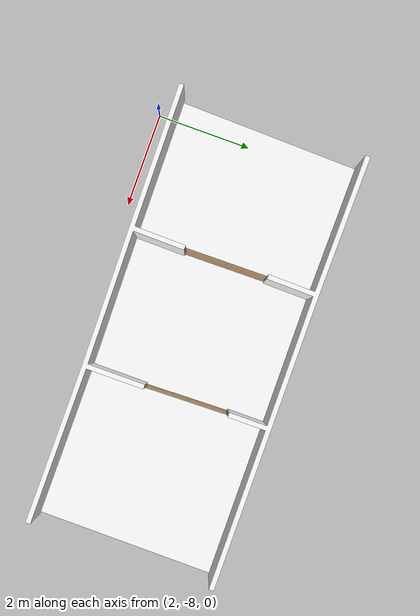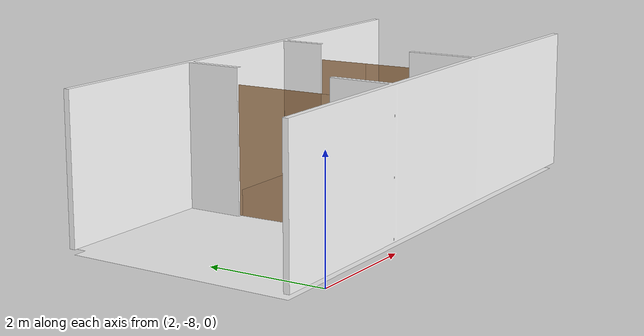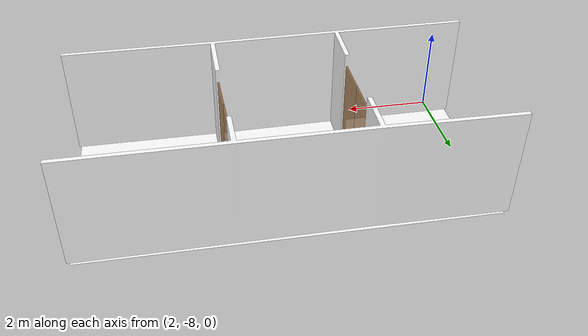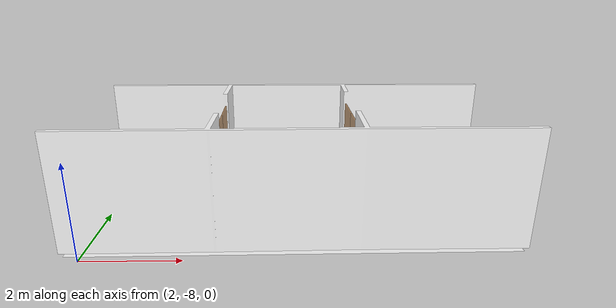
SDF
<sdf version="1.7">
 <world name="world">
  <scene><ambient>0.8 0.8 0.8 1.0</ambient><background>0 0 0</background><grid>false</grid></scene>
  <include><uri>model://sun</uri></include>
  <model name="negative_motion">
   <pose>7.442415968558777 -5.432580376744042 0.0 0 0 1.596654026471199</pose>
   <link name="right">
    <pose>0.46965257697674084 0 1.11 0 0 0</pose>
    <visual name="right_visual">
     <geometry><box><size>0.9293051539534817 0.03 2.2</size></box></geometry>
     <material><ambient>0.5 0.25 0 0.6</ambient><diffuse>0.5 0.25 0 0.6</diffuse></material>
    </visual>
    <collision name="right_collision">
     <geometry><box><size>0.9293051539534817 0.03 2.2</size></box></geometry>
     <surface><contact><collide_bitmask>0x02</collide_bitmask></contact></surface>
    </collision>
    <inertial>
     <mass>50.0</mass>
     <inertia><ixx>20.17041666666667</ixx><iyy>23.765033621518775</iyy><izz>3.6021169548521015</izz></inertia>
    </inertial>
   </link>
   <joint name="right_joint" type="revolute">
    <parent>world</parent>
    <child>right</child>
    <axis><xyz>0 0 1</xyz><limit><lower>0</lower><upper>1.57</upper></limit></axis>
    <pose>0.46965257697674084 0 0 0 0 0</pose>
   </joint>
   <link name="left">
    <pose>-0.46965257697674084 0 1.11 0 0 0</pose>
    <visual name="left_visual">
     <geometry><box><size>0.9293051539534817 0.03 2.2</size></box></geometry>
     <material><ambient>0.5 0.25 0 0.6</ambient><diffuse>0.5 0.25 0 0.6</diffuse></material>
    </visual>
    <collision name="left_collision">
     <geometry><box><size>0.9293051539534817 0.03 2.2</size></box></geometry>
     <surface><contact><collide_bitmask>0x02</collide_bitmask></contact></surface>
    </collision>
    <inertial>
     <mass>50.0</mass>
     <inertia><ixx>20.17041666666667</ixx><iyy>23.765033621518775</iyy><izz>3.6021169548521015</izz></inertia>
    </inertial>
   </link>
   <joint name="left_joint" type="revolute">
    <parent>world</parent>
    <child>left</child>
    <axis><xyz>0 0 1</xyz><limit><lower>-1.57</lower><upper>0</upper></limit></axis>
    <pose>-0.46965257697674084 0 0 0 0 0</pose>
   </joint>
   <plugin name="door" filename="libdoor.so">
    <v_max_door>0.5</v_max_door>
    <a_max_door>0.3</a_max_door>
    <a_nom_door>0.15</a_nom_door>
    <dx_min_door>0.01</dx_min_door>
    <f_max_door>500.0</f_max_door>
    <door name="negative_motion" type="DoubleSwingDoor" left_joint_name="left_joint" right_joint_name="right_joint"/>
   </plugin>
  </model>
  <model name="positive_motion">
   <pose>4.560670876610997 -5.6187494378998295 0.0 0 0 -1.5620784649824977</pose>
   <link name="right">
    <pose>0.4654555378216558 0 1.11 0 0 0</pose>
    <visual name="right_visual">
     <geometry><box><size>0.9209110756433115 0.03 2.2</size></box></geometry>
     <material><ambient>0.5 0.25 0 0.6</ambient><diffuse>0.5 0.25 0 0.6</diffuse></material>
    </visual>
    <collision name="right_collision">
     <geometry><box><size>0.9209110756433115 0.03 2.2</size></box></geometry>
     <surface><contact><collide_bitmask>0x02</collide_bitmask></contact></surface>
    </collision>
    <inertial>
     <mass>50.0</mass>
     <inertia><ixx>20.17041666666667</ixx><iyy>23.700321705177174</iyy><izz>3.5374050385105047</izz></inertia>
    </inertial>
   </link>
   <joint name="right_joint" type="revolute">
    <parent>world</parent>
    <child>right</child>
    <axis><xyz>0 0 -1</xyz><limit><lower>0</lower><upper>1.57</upper></limit></axis>
    <pose>0.4654555378216558 0 0 0 0 0</pose>
   </joint>
   <link name="left">
    <pose>-0.4654555378216558 0 1.11 0 0 0</pose>
    <visual name="left_visual">
     <geometry><box><size>0.9209110756433115 0.03 2.2</size></box></geometry>
     <material><ambient>0.5 0.25 0 0.6</ambient><diffuse>0.5 0.25 0 0.6</diffuse></material>
    </visual>
    <collision name="left_collision">
     <geometry><box><size>0.9209110756433115 0.03 2.2</size></box></geometry>
     <surface><contact><collide_bitmask>0x02</collide_bitmask></contact></surface>
    </collision>
    <inertial>
     <mass>50.0</mass>
     <inertia><ixx>20.17041666666667</ixx><iyy>23.700321705177174</iyy><izz>3.5374050385105047</izz></inertia>
    </inertial>
   </link>
   <joint name="left_joint" type="revolute">
    <parent>world</parent>
    <child>left</child>
    <axis><xyz>0 0 -1</xyz><limit><lower>-1.57</lower><upper>0</upper></limit></axis>
    <pose>-0.4654555378216558 0 0 0 0 0</pose>
   </joint>
   <plugin name="door" filename="libdoor.so">
    <v_max_door>0.5</v_max_door>
    <a_max_door>0.3</a_max_door>
    <a_nom_door>0.15</a_nom_door>
    <dx_min_door>0.01</dx_min_door>
    <f_max_door>500.0</f_max_door>
    <door name="positive_motion" type="DoubleSwingDoor" left_joint_name="left_joint" right_joint_name="right_joint"/>
   </plugin>
  </model>
  <include><name>building_L1</name><uri>model://building_L1</uri></include>
  <rmf_charger_waypoints name="charger_waypoints"/>
 </world>
</sdf>

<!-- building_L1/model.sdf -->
<sdf version="1.7">
  <model name="building_L1">
    <static>true</static>
    <link name="floor_1">
      <visual name="visual">
        <geometry>
          <mesh>
            <uri>model://building_L1/meshes/floor_1.obj</uri>
          </mesh>
        </geometry>
        <material>
          <diffuse>1.0 1.0 1.0</diffuse>
          <specular>0.1 0.1 0.1</specular>
          <pbr>
            <metal>
              <metalness>0.0</metalness>
              <albedo_map>model://building_L1/meshes/blue_linoleum.png</albedo_map>
            </metal>
          </pbr>
          <script>
            <uri>model://building_L1/meshes/</uri>
            <name>floor_1_Diffuse</name>
          </script>
        </material>
      </visual>
      <collision name="collision">
        <geometry>
          <mesh>
            <uri>model://building_L1/meshes/floor_1.obj</uri>
          </mesh>
        </geometry>
        <surface>
          <contact>
            <collide_bitmask>0x01</collide_bitmask>
          </contact>
        </surface>
      </collision>
    </link>
    <link name="wall_1">
      <visual name="wall_1">
        <geometry>
          <mesh>
            <uri>model://building_L1/meshes/wall_1.obj</uri>
          </mesh>
        </geometry>
        <transparency>0.0</transparency>
        <material>
          <diffuse>1.0 1.0 1.0</diffuse>
          <specular>0.1 0.1 0.1</specular>
          <pbr>
            <metal>
              <metalness>0.0</metalness>
              <albedo_map>model://building_L1/meshes/default.png</albedo_map>
            </metal>
          </pbr>
          <script>
            <uri>model://building_L1/meshes/</uri>
            <name>wall_1_Diffuse</name>
          </script>
        </material>
      </visual>
      <collision name="collision">
        <geometry>
          <mesh>
            <uri>model://building_L1/meshes/wall_1.obj</uri>
          </mesh>
        </geometry>
        <surface>
          <contact>
            <collide_bitmask>0x01</collide_bitmask>
          </contact>
        </surface>
      </collision>
      <pose>1.5069600134982777 -7.71723824632799 0 0 0 0</pose>
    </link>
  </model>
</sdf>
